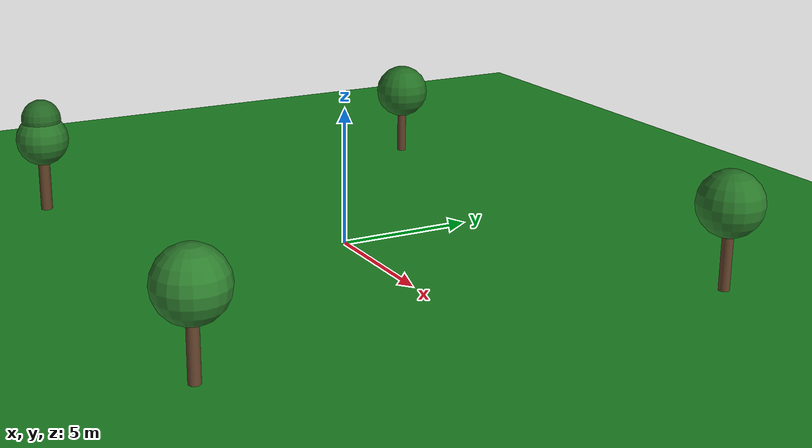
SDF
<?xml version="1.0" ?>
<sdf version="1.6">
  <world name="mbam_tracking_world">
    <include>
      <uri>model://sun</uri>
    </include>

    <physics type="ode">
      <max_step_size>0.002</max_step_size>
      <real_time_update_rate>500</real_time_update_rate>
      <real_time_factor>1</real_time_factor>
    </physics>

    <scene>
      <ambient>0.45 0.45 0.45 1</ambient>
      <background>0.90 0.94 1.0 1</background>
      <shadows>true</shadows>
    </scene>

    <model name="green_ground">
      <static>true</static>
      <link name="ground_link">
        <collision name="ground_collision">
          <geometry>
            <plane>
              <normal>0 0 1</normal>
              <size>250 250</size>
            </plane>
          </geometry>
        </collision>
        <visual name="ground_visual">
          <geometry>
            <plane>
              <normal>0 0 1</normal>
              <size>250 250</size>
            </plane>
          </geometry>
          <material>
            <ambient>0.10 0.48 0.12 1</ambient>
            <diffuse>0.12 0.56 0.15 1</diffuse>
            <specular>0.02 0.02 0.02 1</specular>
          </material>
        </visual>
      </link>
    </model>

    <model name="tree_01">
      <static>true</static>
      <pose>-9.0 -8.5 0 0 0 0</pose>
      <link name="tree_link">
        <visual name="trunk">
          <pose>0 0 1.1 0 0 0</pose>
          <geometry>
            <cylinder>
              <radius>0.22</radius>
              <length>2.2</length>
            </cylinder>
          </geometry>
          <material>
            <ambient>0.28 0.20 0.12 1</ambient>
            <diffuse>0.36 0.24 0.14 1</diffuse>
          </material>
        </visual>
        <visual name="leaves_low">
          <pose>0 0 2.8 0 0 0</pose>
          <geometry>
            <sphere>
              <radius>1.0</radius>
            </sphere>
          </geometry>
          <material>
            <ambient>0.12 0.34 0.12 1</ambient>
            <diffuse>0.16 0.46 0.16 1</diffuse>
          </material>
        </visual>
        <visual name="leaves_high">
          <pose>0 0 3.6 0 0 0</pose>
          <geometry>
            <sphere>
              <radius>0.75</radius>
            </sphere>
          </geometry>
          <material>
            <ambient>0.10 0.30 0.10 1</ambient>
            <diffuse>0.14 0.40 0.14 1</diffuse>
          </material>
        </visual>
      </link>
    </model>

    <model name="tree_02">
      <static>true</static>
      <pose>8.8 -9.2 0 0 0 0</pose>
      <link name="tree_link">
        <visual name="trunk">
          <pose>0 0 1.0 0 0 0</pose>
          <geometry>
            <cylinder>
              <radius>0.20</radius>
              <length>2.0</length>
            </cylinder>
          </geometry>
          <material>
            <ambient>0.30 0.20 0.13 1</ambient>
            <diffuse>0.38 0.25 0.16 1</diffuse>
          </material>
        </visual>
        <visual name="leaves">
          <pose>0 0 3.0 0 0 0</pose>
          <geometry>
            <sphere>
              <radius>1.2</radius>
            </sphere>
          </geometry>
          <material>
            <ambient>0.14 0.36 0.14 1</ambient>
            <diffuse>0.18 0.50 0.18 1</diffuse>
          </material>
        </visual>
      </link>
    </model>

    <model name="tree_03">
      <static>true</static>
      <pose>-10.2 8.0 0 0 0 0</pose>
      <link name="tree_link">
        <visual name="trunk">
          <pose>0 0 0.95 0 0 0</pose>
          <geometry>
            <cylinder>
              <radius>0.18</radius>
              <length>1.9</length>
            </cylinder>
          </geometry>
          <material>
            <ambient>0.28 0.18 0.12 1</ambient>
            <diffuse>0.35 0.23 0.15 1</diffuse>
          </material>
        </visual>
        <visual name="leaves">
          <pose>0 0 2.7 0 0 0</pose>
          <geometry>
            <sphere>
              <radius>1.1</radius>
            </sphere>
          </geometry>
          <material>
            <ambient>0.10 0.31 0.10 1</ambient>
            <diffuse>0.14 0.44 0.14 1</diffuse>
          </material>
        </visual>
      </link>
    </model>

    <model name="tree_04">
      <static>true</static>
      <pose>10.0 9.0 0 0 0 0</pose>
      <link name="tree_link">
        <visual name="trunk">
          <pose>0 0 1.0 0 0 0</pose>
          <geometry>
            <cylinder>
              <radius>0.19</radius>
              <length>2.0</length>
            </cylinder>
          </geometry>
          <material>
            <ambient>0.29 0.19 0.12 1</ambient>
            <diffuse>0.37 0.24 0.15 1</diffuse>
          </material>
        </visual>
        <visual name="leaves">
          <pose>0 0 3.0 0 0 0</pose>
          <geometry>
            <sphere>
              <radius>1.15</radius>
            </sphere>
          </geometry>
          <material>
            <ambient>0.12 0.33 0.12 1</ambient>
            <diffuse>0.16 0.47 0.16 1</diffuse>
          </material>
        </visual>
      </link>
    </model>

    <plugin name="gazebo_ros_state" filename="libgazebo_ros_state.so">
      <ros>
        <namespace>/gazebo</namespace>
      </ros>
      <update_rate>30.0</update_rate>
    </plugin>

    <gui fullscreen="0">
      <camera name="user_camera">
        <pose>0 -25 25 0.8 0 1.57</pose>
      </camera>
    </gui>
  </world>
</sdf>
